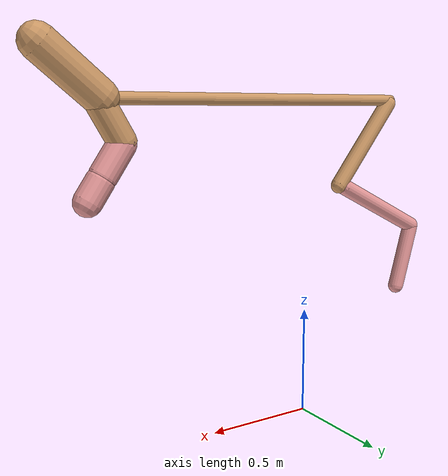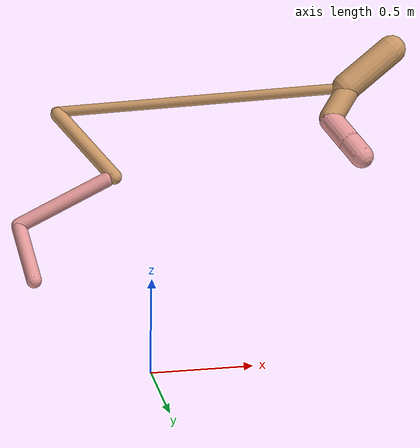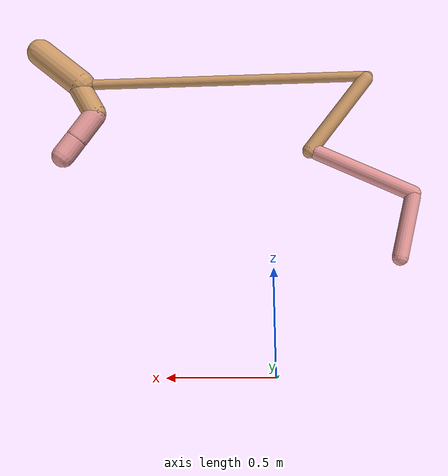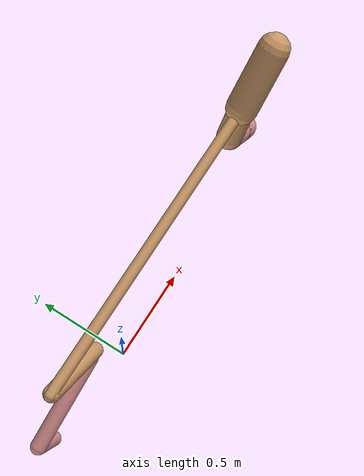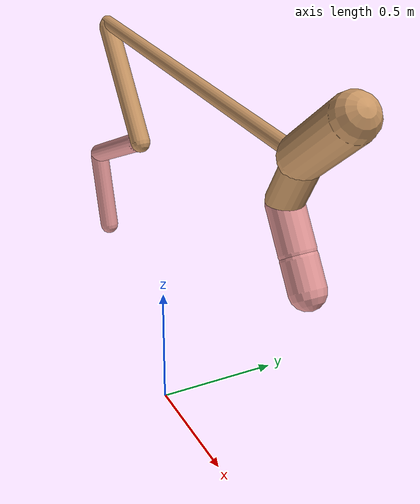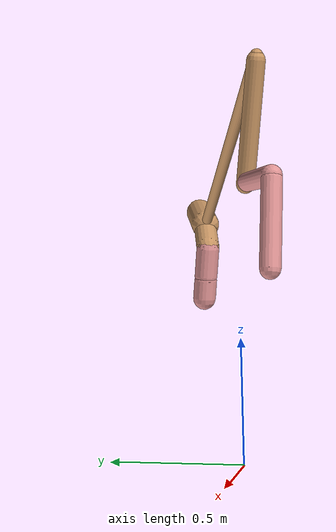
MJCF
<mujoco model="cheetah">
  <compiler angle="radian" coordinate="local" inertiafromgeom="true" settotalmass="14" />
  <default>
    <joint armature=".1" damping=".01" limited="true" solimplimit="0 .8 .03" solreflimit=".02 1" stiffness="8" />
    <geom conaffinity="0" condim="3" contype="1" friction="0.8 .1 .1" rgba="0.8 0.6 .4 1" solimp="0.0 0.8 0.01" solref="0.02 1" />
    <motor ctrllimited="true" ctrlrange="-1 1" />
  </default>
  <size nstack="300000" nuser_geom="1" />
  <option gravity="0 0 -9.81" timestep="0.01" />
  <worldbody>
    <body name="torso" pos="0.0 0.0 1.4803878447967516">
      <joint armature="0" axis="1 0 0" damping="0" limited="false" name="ignorex" pos="0 0 0" stiffness="0" type="slide" />
      <joint armature="0" axis="0 0 1" damping="0" limited="false" name="ignorez" pos="0 0 0" stiffness="0" type="slide" />
      <joint armature="0" axis="0 1 0" damping="0" limited="false" name="ignorey" pos="0 0 0" stiffness="0" type="hinge" />
      <geom fromto="-0.5 0.0 0.0 0.9953156928315255 0.0 0.0" name="torso" size="0.026131936237748142" type="capsule" />
      <geom axisangle="0 1 0 .87" name="head" pos="1.0953156928315257 0.0 0.1" size="0.07248625097433398 0.15" type="capsule" />

      <body name="bthigh" pos="-.5 0 0">
        <joint axis="0 1 0" damping="6" name="bthigh" pos="0 0 0" range="-.52 1.05" stiffness="240" type="hinge" />
        <geom axisangle="0 1 0 -3.8" name="bthigh" pos="0.15846828445617583 0.0 -0.20600876979302857" size="0.03785767300113747 0.24089511652163473" type="capsule" />
        <body name="bshin" pos="0.2769365689123517 0.0 -0.4020175395860571">
          <joint axis="0 1 0" damping="4.5" name="bshin" pos="0 0 0" range="-.785 .785" stiffness="180" type="hinge" />
          <geom axisangle="0 1 0 -2.03" name="bshin" pos="-0.22872882727695387 0.0 -0.11436441363847694" rgba="0.9 0.6 0.6 1" size="0.03785767300113747 0.24920184467755316" type="capsule" />
          <body name="bfoot" pos="-0.45745765455390774 0.0 -0.22872882727695387">
            <joint axis="0 1 0" damping="3" name="bfoot" pos="0 0 0" range="-.4 .785" stiffness="120" type="hinge" />
            <geom axisangle="0 1 0 -.27" name="bfoot" pos="0.04836831537774704 0.0 -0.15639088638804877" rgba="0.9 0.6 0.6 1" size="0.03785767300113747 0.15616648933126664" type="capsule" />
            <inertial mass="10" />
          </body>
        </body>
      </body>
      <body name="fthigh" pos="0.9953156928315257 0.0 0.0">
        <joint axis="0 1 0" damping="4.5" name="fthigh" pos="0 0 0" range="-1.5 0.8" stiffness="180" type="hinge" />
        <geom axisangle="0 1 0 .52" name="fthigh" pos="-0.04989554608158897 0.0 -0.0855352218541525" size="0.058925353052288715 0.0931" type="capsule" />
        <body name="fshin" pos="-0.09979109216317794 0.0 -0.171070443708305">
          <joint axis="0 1 0" damping="3" name="fshin" pos="0 0 0" range="-1.2 1.1" stiffness="120" type="hinge" />
          <geom axisangle="0 1 0 -.6" name="fshin" pos="0.046381400387749405 0.0 -0.06422040053688378" rgba="0.9 0.6 0.6 1" size="0.058925353052288715 0.07419999999999999" type="capsule" />
          <body name="ffoot" pos="0.09276280077549881 0.0 -0.12844080107376757">
            <joint axis="0 1 0" damping="1.5" name="ffoot" pos="0 0 0" range="-3.1 -0.3" stiffness="60" type="hinge" />
            <geom axisangle="0 1 0 -.6" name="ffoot" pos="0.033644090582416526 0.0 -0.05233525201709238" rgba="0.9 0.6 0.6 1" size="0.058925353052288715 0.049" type="capsule" />
            <inertial mass="10" />
          </body>
        </body>
      </body>
    </body>
  </worldbody>
  <actuator>
    <motor gear="120" joint="bthigh" name="bthigh" />
    <motor gear="90" joint="bshin" name="bshin" />
    <motor gear="60" joint="bfoot" name="bfoot" />
    <motor gear="120" joint="fthigh" name="fthigh" />
    <motor gear="60" joint="fshin" name="fshin" />
    <motor gear="30" joint="ffoot" name="ffoot" />
  </actuator>
</mujoco>
